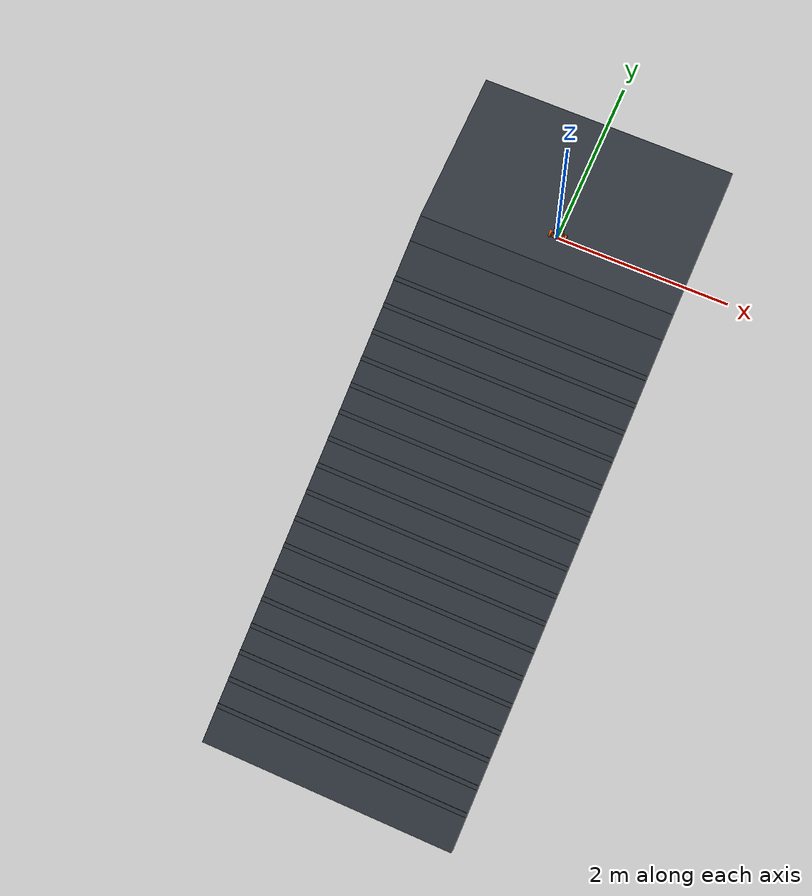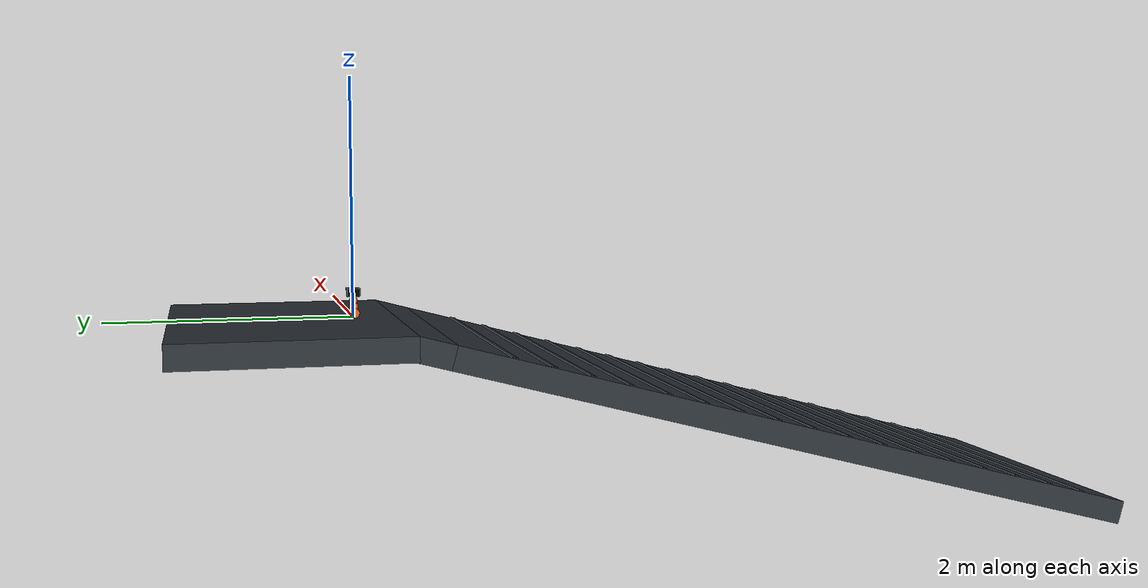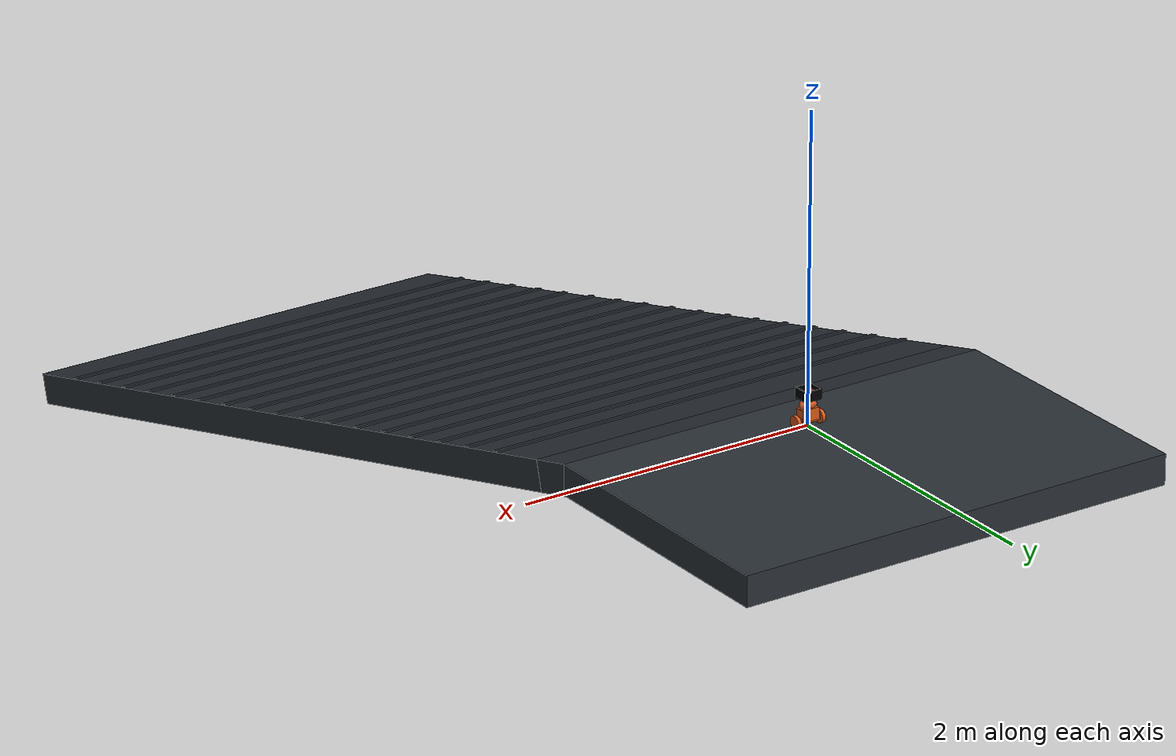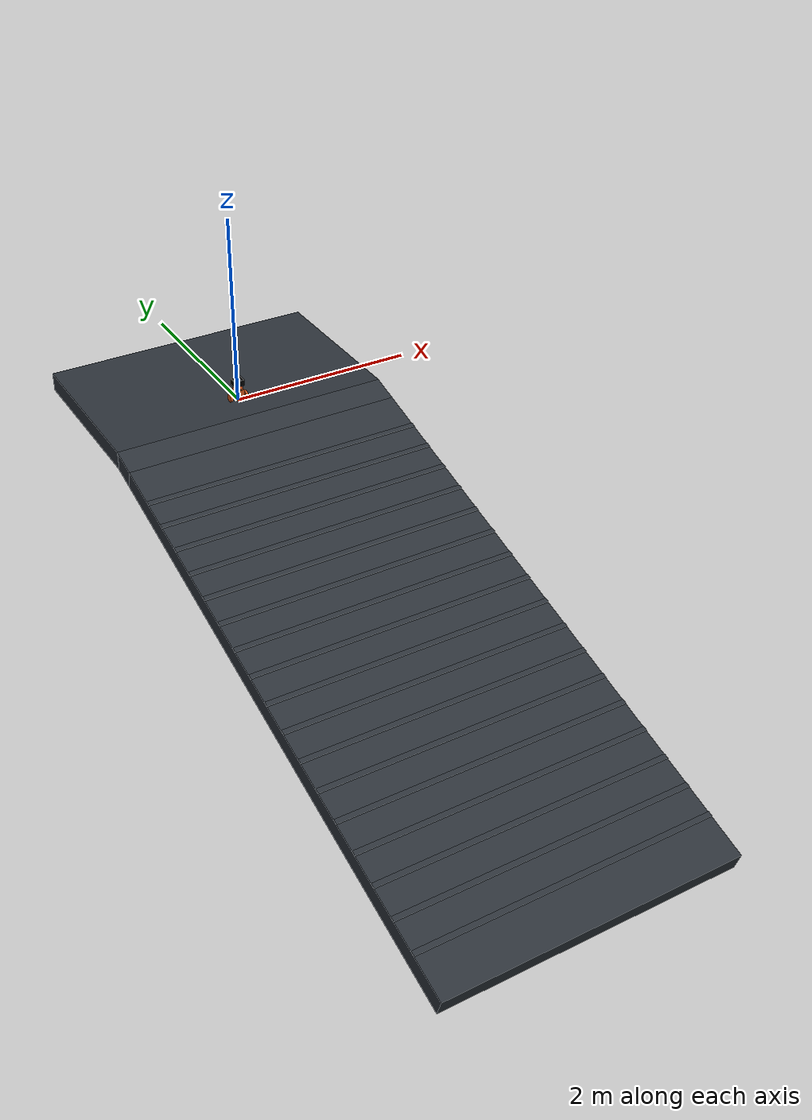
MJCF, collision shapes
<mujoco model="Stage4B rtrain_073_m15p0">
  <compiler angle="radian" meshdir="../../../../assets/upstream_local" />
  <option timestep="0.001" integrator="implicitfast" gravity="0 0 -9.81" />
  <statistic center="0 0 0.10" extent="0.35" />
  <default>
    <default class="visual">
      <geom contype="0" conaffinity="0" group="2" />
    </default>
    <default class="collision">
      <geom group="3" rgba="0.85 0.35 0.12 0.25" solref="0.005 1" solimp="0.9 0.95 0.001" />
    </default>
  </default>
  <asset>
    <texture name="ground_tex" type="2d" builtin="checker" rgb1="0.22 0.25 0.28" rgb2="0.12 0.14 0.16" width="256" height="256" />
    <material name="ground_mat" texture="ground_tex" texrepeat="4 4" reflectance="0.15" />
    <mesh name="main_frame_mesh" file="main_frame.stl" scale="0.001 0.001 0.001" />
    <mesh name="wheel_base_mesh" file="wheel_base.stl" scale="0.001 0.001 0.001" />
    <mesh name="cover_mesh" file="cover.stl" scale="0.001 0.001 0.001" />
    <mesh name="motor_left_mesh" file="motor_left.stl" scale="0.001 0.001 0.001" />
    <mesh name="motor_right_mesh" file="motor_right.stl" scale="0.001 0.001 0.001" />
    <mesh name="mc33926_mesh" file="mc33926.stl" scale="0.001 0.001 0.001" />
    <mesh name="wheel_mesh" file="wheel.stl" scale="0.001 0.001 0.001" />
    <mesh name="adapter_left_mesh" file="adapter_left.stl" scale="0.001 0.001 0.001" />
    <mesh name="adapter_right_mesh" file="adapter_right.stl" scale="0.001 0.001 0.001" />
  </asset>
  <worldbody>
    <light pos="0 -0.5 0.8" dir="0 0.6 -1" diffuse="0.8 0.8 0.8" />
    <geom name="terrain_flat" type="box" pos="0 0.575 -0.1" size="1.5 0.925 0.1" material="ground_mat" friction="0.3666233 0.005 0.0001" condim="3" />
    <geom name="terrain_transition" type="box" pos="0 -0.469006969433 -0.135415439394" euler="0.261799387799 0 0" size="1.5 0.15 0.1" material="ground_mat" friction="0.3666233 0.005 0.0001" condim="3" />
    <geom name="terrain_constant_grade" type="box" pos="0 -3.51167332224 -0.950695431467" euler="0.261799387799 0 0" size="1.5 3 0.1" material="ground_mat" friction="0.3666233 0.005 0.0001" condim="3" />
    <geom name="terrain_rough_00" type="box" pos="0 -1.07562676939 -0.189701508179" euler="0.261799387799 0 0" size="1.5 0.025659044929 0.00456844151742" material="ground_mat" friction="0.3666233 0.005 0.0001" condim="3" />
    <geom name="terrain_rough_01" type="box" pos="0 -1.38418750904 -0.272380109186" euler="0.261799387799 0 0" size="1.5 0.025659044929 0.00456844151742" material="ground_mat" friction="0.3666233 0.005 0.0001" condim="3" />
    <geom name="terrain_rough_02" type="box" pos="0 -1.6927482487 -0.355058710193" euler="0.261799387799 0 0" size="1.5 0.025659044929 0.00456844151742" material="ground_mat" friction="0.3666233 0.005 0.0001" condim="3" />
    <geom name="terrain_rough_03" type="box" pos="0 -2.00130898836 -0.4377373112" euler="0.261799387799 0 0" size="1.5 0.025659044929 0.00456844151742" material="ground_mat" friction="0.3666233 0.005 0.0001" condim="3" />
    <geom name="terrain_rough_04" type="box" pos="0 -2.30986972802 -0.520415912207" euler="0.261799387799 0 0" size="1.5 0.025659044929 0.00456844151742" material="ground_mat" friction="0.3666233 0.005 0.0001" condim="3" />
    <geom name="terrain_rough_05" type="box" pos="0 -2.61843046767 -0.603094513214" euler="0.261799387799 0 0" size="1.5 0.025659044929 0.00456844151742" material="ground_mat" friction="0.3666233 0.005 0.0001" condim="3" />
    <geom name="terrain_rough_06" type="box" pos="0 -2.92699120733 -0.685773114221" euler="0.261799387799 0 0" size="1.5 0.025659044929 0.00456844151742" material="ground_mat" friction="0.3666233 0.005 0.0001" condim="3" />
    <geom name="terrain_rough_07" type="box" pos="0 -3.23555194699 -0.768451715228" euler="0.261799387799 0 0" size="1.5 0.025659044929 0.00456844151742" material="ground_mat" friction="0.3666233 0.005 0.0001" condim="3" />
    <geom name="terrain_rough_08" type="box" pos="0 -3.54411268664 -0.851130316235" euler="0.261799387799 0 0" size="1.5 0.025659044929 0.00456844151742" material="ground_mat" friction="0.3666233 0.005 0.0001" condim="3" />
    <geom name="terrain_rough_09" type="box" pos="0 -3.8526734263 -0.933808917242" euler="0.261799387799 0 0" size="1.5 0.025659044929 0.00456844151742" material="ground_mat" friction="0.3666233 0.005 0.0001" condim="3" />
    <geom name="terrain_rough_10" type="box" pos="0 -4.16123416596 -1.01648751825" euler="0.261799387799 0 0" size="1.5 0.025659044929 0.00456844151742" material="ground_mat" friction="0.3666233 0.005 0.0001" condim="3" />
    <geom name="terrain_rough_11" type="box" pos="0 -4.46979490561 -1.09916611926" euler="0.261799387799 0 0" size="1.5 0.025659044929 0.00456844151742" material="ground_mat" friction="0.3666233 0.005 0.0001" condim="3" />
    <geom name="terrain_rough_12" type="box" pos="0 -4.77835564527 -1.18184472026" euler="0.261799387799 0 0" size="1.5 0.025659044929 0.00456844151742" material="ground_mat" friction="0.3666233 0.005 0.0001" condim="3" />
    <geom name="terrain_rough_13" type="box" pos="0 -5.08691638493 -1.26452332127" euler="0.261799387799 0 0" size="1.5 0.025659044929 0.00456844151742" material="ground_mat" friction="0.3666233 0.005 0.0001" condim="3" />
    <geom name="terrain_rough_14" type="box" pos="0 -5.39547712458 -1.34720192228" euler="0.261799387799 0 0" size="1.5 0.025659044929 0.00456844151742" material="ground_mat" friction="0.3666233 0.005 0.0001" condim="3" />
    <geom name="terrain_rough_15" type="box" pos="0 -5.70403786424 -1.42988052328" euler="0.261799387799 0 0" size="1.5 0.025659044929 0.00456844151742" material="ground_mat" friction="0.3666233 0.005 0.0001" condim="3" />
    <geom name="terrain_rough_16" type="box" pos="0 -6.0125986039 -1.51255912429" euler="0.261799387799 0 0" size="1.5 0.025659044929 0.00456844151742" material="ground_mat" friction="0.3666233 0.005 0.0001" condim="3" />
    <body name="chassis" pos="0 0 0.043">
      <freejoint name="root" />
      <inertial pos="0.0001592717873 -0.001394466535 0.03368627387" mass="0.8173706489" fullinertia="0.0009508052638 0.001636345835 0.0009938057434 -1.163464906e-07 -4.840496598e-06 3.454944565e-05" />
      <geom name="main_frame_visual" class="visual" type="mesh" mesh="main_frame_mesh" rgba="0.12 0.42 0.72 1" />
      <geom name="wheel_base_visual" class="visual" type="mesh" mesh="wheel_base_mesh" rgba="0.95 0.50 0.10 1" />
      <geom name="cover_visual" class="visual" type="mesh" mesh="cover_mesh" rgba="0.18 0.72 0.32 0.72" />
      <geom name="motor_left_visual" class="visual" type="mesh" mesh="motor_left_mesh" rgba="0.45 0.47 0.50 1" />
      <geom name="motor_right_visual" class="visual" type="mesh" mesh="motor_right_mesh" rgba="0.45 0.47 0.50 1" />
      <geom name="mc33926_visual" class="visual" type="mesh" mesh="mc33926_mesh" rgba="0.08 0.36 0.18 1" />
      <geom name="battery_1_visual" class="visual" type="box" pos="0 -0.012 0.038" size="0.035 0.007 0.025" rgba="0.15 0.25 0.75 1" />
      <geom name="battery_2_visual" class="visual" type="box" pos="0 0.012 0.038" size="0.035 0.007 0.025" rgba="0.15 0.25 0.75 1" />
      <geom name="electronics_lump_visual" class="visual" type="box" pos="0 -0.024 0.067" size="0.035 0.006 0.0425" rgba="0.10 0.42 0.20 0.65" />
      <geom name="wheel_base_collision" class="collision" type="box" pos="0 0.0005 0.0042" size="0.074 0.0201 0.0198" />
      <geom name="lower_chassis_collision" class="collision" type="box" pos="0.001 -0.0015 0.038" size="0.0595 0.0325 0.038" />
      <geom name="upper_chassis_collision" class="collision" type="capsule" fromto="-0.024 -0.0015 0.096 0.026 -0.0015 0.096" size="0.033" />
      <geom name="basket_floor" class="collision" type="box" pos="0 0 0.137" size="0.055 0.052 0.003" friction="0.024 0.005 0.0001" rgba="0.18 0.30 0.48 0.65" />
      <geom name="basket_front_wall" class="collision" type="box" pos="0 -0.052 0.170" size="0.055 0.003 0.033" friction="0.024 0.005 0.0001" rgba="0 0 0 0" />
      <geom name="basket_rear_wall" class="collision" type="box" pos="0 0.052 0.170" size="0.055 0.003 0.033" friction="0.024 0.005 0.0001" rgba="0 0 0 0" />
      <geom name="basket_left_wall" class="collision" type="box" pos="-0.055 0 0.170" size="0.003 0.052 0.033" friction="0.024 0.005 0.0001" rgba="0 0 0 0" />
      <geom name="basket_right_wall" class="collision" type="box" pos="0.055 0 0.170" size="0.003 0.052 0.033" friction="0.024 0.005 0.0001" rgba="0 0 0 0" />
      <site name="imu_site" type="box" pos="0 0 0.020" quat="1 0 0 0" size="0.004 0.003 0.001" rgba="1 0.15 0.05 1" />
      <body name="left_wheel" pos="-0.0885 0 0">
        <joint name="left_wheel_hinge" type="hinge" axis="1 0 0" damping="0.002" frictionloss="0.002" />
        <inertial pos="0.001407549168 -2.310217342e-08 4.024972882e-05" mass="0.1051" fullinertia="8.559060347e-05 4.760138372e-05 4.763051958e-05 2.677568832e-11 -3.525425309e-08 -1.463149106e-11" />
        <geom name="left_wheel_visual" class="visual" type="mesh" mesh="wheel_mesh" rgba="0.04 0.05 0.06 1" />
        <geom name="left_adapter_visual" class="visual" type="mesh" mesh="adapter_left_mesh" rgba="0.12 0.48 0.82 1" />
        <geom name="left_wheel_collision" class="collision" type="cylinder" size="0.042 0.012" quat="0.7071067812 0 0.7071067812 0" friction="0.3666233 0.005 0.0001" />
      </body>
      <body name="right_wheel" pos="0.0885 0 0">
        <joint name="right_wheel_hinge" type="hinge" axis="1 0 0" damping="0.002" frictionloss="0.002" />
        <inertial pos="-0.001407437868 -2.310217342e-08 -4.019113045e-05" mass="0.1051" fullinertia="8.559060397e-05 4.760141714e-05 4.763055251e-05 -2.601653908e-11 -3.526339188e-08 1.57007511e-11" />
        <geom name="right_wheel_visual" class="visual" type="mesh" mesh="wheel_mesh" rgba="0.04 0.05 0.06 1" />
        <geom name="right_adapter_visual" class="visual" type="mesh" mesh="adapter_right_mesh" rgba="0.12 0.48 0.82 1" />
        <geom name="right_wheel_collision" class="collision" type="cylinder" size="0.042 0.012" quat="0.7071067812 0 0.7071067812 0" friction="0.3666233 0.005 0.0001" />
      </body>
    </body>
    <body name="moving_payload" pos="0 0 0.204">
      <freejoint name="moving_payload_free" />
      <inertial pos="0 0 0" mass="0.20" diaginertia="0.0000533333333 0.0001333333333 0.0001333333333" />
      <geom name="moving_payload_collision" class="collision" type="box" size="0.040 0.020 0.020" friction="0.024 0.005 0.0001" rgba="0.78 0.18 0.12 1" />
    </body>
  </worldbody>
  <actuator>
    <motor name="left_wheel_torque" joint="left_wheel_hinge" gear="1" ctrllimited="true" ctrlrange="-0.63 0.63" forcelimited="true" forcerange="-0.63 0.63" />
    <motor name="right_wheel_torque" joint="right_wheel_hinge" gear="1" ctrllimited="true" ctrlrange="-0.63 0.63" forcelimited="true" forcerange="-0.63 0.63" />
  </actuator>
  <sensor>
    <accelerometer name="imu_accelerometer" site="imu_site" />
    <gyro name="imu_gyro" site="imu_site" />
    <jointpos name="left_wheel_angle" joint="left_wheel_hinge" />
    <jointpos name="right_wheel_angle" joint="right_wheel_hinge" />
  </sensor>
  <keyframe>
    <key name="upright" qpos="0 0 0.043 1 0 0 0 0 0 0 0 0.204 1 0 0 0" />
  </keyframe>
</mujoco>
